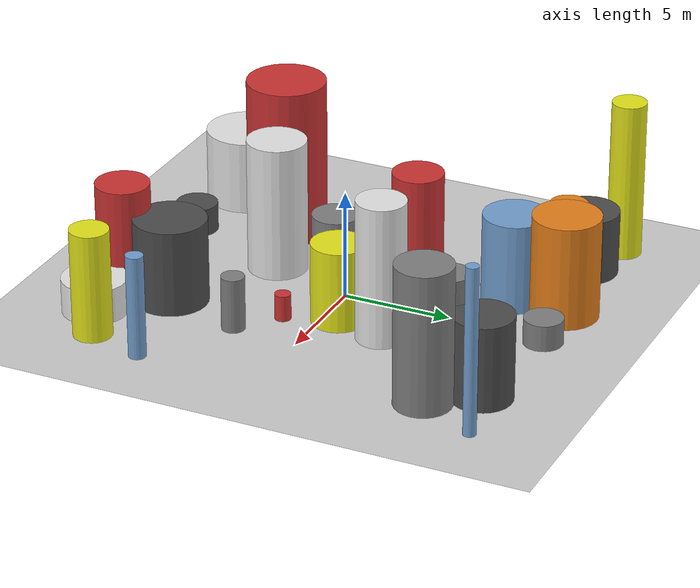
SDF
<?xml version='1.0'?>
<sdf version='1.6'>
  <world name='default'>
    <!-- Sun light -->
    <light name='sun' type='directional'>
      <cast_shadows>1</cast_shadows>
      <pose>0 0 10 0 0 0</pose>
      <diffuse>0.8 0.8 0.8 1</diffuse>
      <specular>0.2 0.2 0.2 1</specular>
      <attenuation>
        <range>1000</range>
        <constant>0.9</constant>
        <linear>0.01</linear>
        <quadratic>0.001</quadratic>
      </attenuation>
      <direction>-0.5 0.1 -0.9</direction>
    </light>

    <!-- Ground plane -->
    <model name='ground_plane'>
      <static>1</static>
      <link name='link'>
        <collision name='collision'>
          <geometry>
            <plane>
              <normal>0 0 1</normal>
              <size>100 100</size>
            </plane>
          </geometry>
          <surface>
            <contact>
              <collide_bitmask>65535</collide_bitmask>
              <ode/>
            </contact>
            <friction>
              <ode>
                <mu>100</mu>
                <mu2>50</mu2>
              </ode>
              <torsional><ode/></torsional>
            </friction>
            <bounce/>
          </surface>
          <max_contacts>10</max_contacts>
        </collision>
        <visual name='visual'>
          <cast_shadows>0</cast_shadows>
          <geometry>
            <plane>
              <normal>0 0 1</normal>
              <size>100 100</size>
            </plane>
          </geometry>
          <material>
            <script>
              <uri>file://media/materials/scripts/gazebo.material</uri>
              <n>Gazebo/Grey</n>
            </script>
          </material>
        </visual>
      </link>
    </model>

    <!-- Environment -->
    <magnetic_field>6e-06 2.3e-05 -4.2e-05</magnetic_field>
    <atmosphere type='adiabatic'/>
    <physics name='default_physics' default='0' type='ode'>
      <gravity>0 0 -9.8</gravity>
      <max_step_size>0.004</max_step_size>
      <real_time_factor>1</real_time_factor>
      <real_time_update_rate>250</real_time_update_rate>
    </physics>
    <scene>
      <ambient>0.4 0.4 0.4 1</ambient>
      <background>0.7 0.7 0.7 1</background>
      <shadows>1</shadows>
    </scene>
    <wind/>
    <spherical_coordinates>
      <surface_model>EARTH_WGS84</surface_model>
      <latitude_deg>0</latitude_deg>
      <longitude_deg>0</longitude_deg>
      <elevation>0</elevation>
      <heading_deg>0</heading_deg>
    </spherical_coordinates>

    <!-- ============ OBSTACLES (25) ============ -->
    <model name='obs_00'>
      <static>1</static>
      <link name='link'>
        <visual name='visual'>
          <geometry>
            <cylinder>
              <radius>0.8717</radius>
              <length>4.3655</length>
            </cylinder>
          </geometry>
          <material>
            <script>
              <n>Gazebo/Orange</n>
              <uri>file://media/materials/scripts/gazebo.material</uri>
            </script>
            <ambient>0.9 0.5 0.1 1</ambient>
          </material>
        </visual>
        <collision name='collision'>
          <geometry>
            <cylinder>
              <radius>0.8717</radius>
              <length>4.3655</length>
            </cylinder>
          </geometry>
          <max_contacts>10</max_contacts>
          <surface>
            <contact><ode/></contact>
            <bounce/>
            <friction>
              <ode><mu>1</mu><mu2>1</mu2></ode>
              <torsional><ode/></torsional>
            </friction>
          </surface>
        </collision>
      </link>
      <pose>-4.4762 8.7029 2.1828 0 0 1.8755</pose>
    </model>

    <model name='obs_01'>
      <static>1</static>
      <link name='link'>
        <visual name='visual'>
          <geometry>
            <cylinder>
              <radius>0.2915</radius>
              <length>7.7153</length>
            </cylinder>
          </geometry>
          <material>
            <script>
              <n>Gazebo/Blue</n>
              <uri>file://media/materials/scripts/gazebo.material</uri>
            </script>
            <ambient>0.447 0.624 0.812 1</ambient>
          </material>
        </visual>
        <collision name='collision'>
          <geometry>
            <cylinder>
              <radius>0.2915</radius>
              <length>7.7153</length>
            </cylinder>
          </geometry>
          <max_contacts>10</max_contacts>
          <surface>
            <contact><ode/></contact>
            <bounce/>
            <friction>
              <ode><mu>1</mu><mu2>1</mu2></ode>
              <torsional><ode/></torsional>
            </friction>
          </surface>
        </collision>
      </link>
      <pose>8.8275 9.7919 3.8577 0 0 1.1324</pose>
    </model>

    <model name='obs_02'>
      <static>1</static>
      <link name='link'>
        <visual name='visual'>
          <geometry>
            <cylinder>
              <radius>0.9634</radius>
              <length>1.3261</length>
            </cylinder>
          </geometry>
          <material>
            <script>
              <n>Gazebo/DarkGrey</n>
              <uri>file://media/materials/scripts/gazebo.material</uri>
            </script>
            <ambient>0.3 0.3 0.3 1</ambient>
          </material>
        </visual>
        <collision name='collision'>
          <geometry>
            <cylinder>
              <radius>0.9634</radius>
              <length>1.3261</length>
            </cylinder>
          </geometry>
          <max_contacts>10</max_contacts>
          <surface>
            <contact><ode/></contact>
            <bounce/>
            <friction>
              <ode><mu>1</mu><mu2>1</mu2></ode>
              <torsional><ode/></torsional>
            </friction>
          </surface>
        </collision>
      </link>
      <pose>-3.1771 -9.0283 0.6631 0 0 0.4837</pose>
    </model>

    <model name='obs_03'>
      <static>1</static>
      <link name='link'>
        <visual name='visual'>
          <geometry>
            <cylinder>
              <radius>1.8296</radius>
              <length>7.4890</length>
            </cylinder>
          </geometry>
          <material>
            <script>
              <n>Gazebo/Red</n>
              <uri>file://media/materials/scripts/gazebo.material</uri>
            </script>
            <ambient>0.8 0.2 0.2 1</ambient>
          </material>
        </visual>
        <collision name='collision'>
          <geometry>
            <cylinder>
              <radius>1.8296</radius>
              <length>7.4890</length>
            </cylinder>
          </geometry>
          <max_contacts>10</max_contacts>
          <surface>
            <contact><ode/></contact>
            <bounce/>
            <friction>
              <ode><mu>1</mu><mu2>1</mu2></ode>
              <torsional><ode/></torsional>
            </friction>
          </surface>
        </collision>
      </link>
      <pose>-4.8247 -5.2079 3.7445 0 0 0.2524</pose>
    </model>

    <model name='obs_04'>
      <static>1</static>
      <link name='link'>
        <visual name='visual'>
          <geometry>
            <cylinder>
              <radius>1.0724</radius>
              <length>3.1667</length>
            </cylinder>
          </geometry>
          <material>
            <script>
              <n>Gazebo/Grey</n>
              <uri>file://media/materials/scripts/gazebo.material</uri>
            </script>
            <ambient>0.5 0.5 0.5 1</ambient>
          </material>
        </visual>
        <collision name='collision'>
          <geometry>
            <cylinder>
              <radius>1.0724</radius>
              <length>3.1667</length>
            </cylinder>
          </geometry>
          <max_contacts>10</max_contacts>
          <surface>
            <contact><ode/></contact>
            <bounce/>
            <friction>
              <ode><mu>1</mu><mu2>1</mu2></ode>
              <torsional><ode/></torsional>
            </friction>
          </surface>
        </collision>
      </link>
      <pose>-1.3801 -1.1194 1.5833 0 0 2.6128</pose>
    </model>

    <model name='obs_05'>
      <static>1</static>
      <link name='link'>
        <visual name='visual'>
          <geometry>
            <cylinder>
              <radius>1.8860</radius>
              <length>3.4687</length>
            </cylinder>
          </geometry>
          <material>
            <script>
              <n>Gazebo/White</n>
              <uri>file://media/materials/scripts/gazebo.material</uri>
            </script>
            <ambient>0.9 0.9 0.9 1</ambient>
          </material>
        </visual>
        <collision name='collision'>
          <geometry>
            <cylinder>
              <radius>1.8860</radius>
              <length>3.4687</length>
            </cylinder>
          </geometry>
          <max_contacts>10</max_contacts>
          <surface>
            <contact><ode/></contact>
            <bounce/>
            <friction>
              <ode><mu>1</mu><mu2>1</mu2></ode>
              <torsional><ode/></torsional>
            </friction>
          </surface>
        </collision>
      </link>
      <pose>-7.2040 -8.4754 1.7343 0 0 0.5397</pose>
    </model>

    <model name='obs_06'>
      <static>1</static>
      <link name='link'>
        <visual name='visual'>
          <geometry>
            <cylinder>
              <radius>0.8839</radius>
              <length>5.0562</length>
            </cylinder>
          </geometry>
          <material>
            <script>
              <n>Gazebo/Yellow</n>
              <uri>file://media/materials/scripts/gazebo.material</uri>
            </script>
            <ambient>0.9 0.9 0.1 1</ambient>
          </material>
        </visual>
        <collision name='collision'>
          <geometry>
            <cylinder>
              <radius>0.8839</radius>
              <length>5.0562</length>
            </cylinder>
          </geometry>
          <max_contacts>10</max_contacts>
          <surface>
            <contact><ode/></contact>
            <bounce/>
            <friction>
              <ode><mu>1</mu><mu2>1</mu2></ode>
              <torsional><ode/></torsional>
            </friction>
          </surface>
        </collision>
      </link>
      <pose>7.8494 -8.3391 2.5281 0 0 2.3126</pose>
    </model>

    <model name='obs_07'>
      <static>1</static>
      <link name='link'>
        <visual name='visual'>
          <geometry>
            <cylinder>
              <radius>1.1575</radius>
              <length>6.0859</length>
            </cylinder>
          </geometry>
          <material>
            <script>
              <n>Gazebo/Red</n>
              <uri>file://media/materials/scripts/gazebo.material</uri>
            </script>
            <ambient>0.8 0.2 0.2 1</ambient>
          </material>
        </visual>
        <collision name='collision'>
          <geometry>
            <cylinder>
              <radius>1.1575</radius>
              <length>6.0859</length>
            </cylinder>
          </geometry>
          <max_contacts>10</max_contacts>
          <surface>
            <contact><ode/></contact>
            <bounce/>
            <friction>
              <ode><mu>1</mu><mu2>1</mu2></ode>
              <torsional><ode/></torsional>
            </friction>
          </surface>
        </collision>
      </link>
      <pose>-1.2578 2.9078 3.0429 0 0 2.4791</pose>
    </model>

    <model name='obs_08'>
      <static>1</static>
      <link name='link'>
        <visual name='visual'>
          <geometry>
            <cylinder>
              <radius>1.2330</radius>
              <length>5.1583</length>
            </cylinder>
          </geometry>
          <material>
            <script>
              <n>Gazebo/Red</n>
              <uri>file://media/materials/scripts/gazebo.material</uri>
            </script>
            <ambient>0.8 0.2 0.2 1</ambient>
          </material>
        </visual>
        <collision name='collision'>
          <geometry>
            <cylinder>
              <radius>1.2330</radius>
              <length>5.1583</length>
            </cylinder>
          </geometry>
          <max_contacts>10</max_contacts>
          <surface>
            <contact><ode/></contact>
            <bounce/>
            <friction>
              <ode><mu>1</mu><mu2>1</mu2></ode>
              <torsional><ode/></torsional>
            </friction>
          </surface>
        </collision>
      </link>
      <pose>3.4368 -9.1506 2.5792 0 0 1.2374</pose>
    </model>

    <model name='obs_09'>
      <static>1</static>
      <link name='link'>
        <visual name='visual'>
          <geometry>
            <cylinder>
              <radius>1.5436</radius>
              <length>4.8237</length>
            </cylinder>
          </geometry>
          <material>
            <script>
              <n>Gazebo/Orange</n>
              <uri>file://media/materials/scripts/gazebo.material</uri>
            </script>
            <ambient>0.9 0.5 0.1 1</ambient>
          </material>
        </visual>
        <collision name='collision'>
          <geometry>
            <cylinder>
              <radius>1.5436</radius>
              <length>4.8237</length>
            </cylinder>
          </geometry>
          <max_contacts>10</max_contacts>
          <surface>
            <contact><ode/></contact>
            <bounce/>
            <friction>
              <ode><mu>1</mu><mu2>1</mu2></ode>
              <torsional><ode/></torsional>
            </friction>
          </surface>
        </collision>
      </link>
      <pose>-2.5057 9.3971 2.4118 0 0 2.8350</pose>
    </model>

    <model name='obs_10'>
      <static>1</static>
      <link name='link'>
        <visual name='visual'>
          <geometry>
            <cylinder>
              <radius>1.1261</radius>
              <length>6.5805</length>
            </cylinder>
          </geometry>
          <material>
            <script>
              <n>Gazebo/White</n>
              <uri>file://media/materials/scripts/gazebo.material</uri>
            </script>
            <ambient>0.9 0.9 0.9 1</ambient>
          </material>
        </visual>
        <collision name='collision'>
          <geometry>
            <cylinder>
              <radius>1.1261</radius>
              <length>6.5805</length>
            </cylinder>
          </geometry>
          <max_contacts>10</max_contacts>
          <surface>
            <contact><ode/></contact>
            <bounce/>
            <friction>
              <ode><mu>1</mu><mu2>1</mu2></ode>
              <torsional><ode/></torsional>
            </friction>
          </surface>
        </collision>
      </link>
      <pose>2.8392 3.0356 3.2903 0 0 1.2753</pose>
    </model>

    <model name='obs_11'>
      <static>1</static>
      <link name='link'>
        <visual name='visual'>
          <geometry>
            <cylinder>
              <radius>0.8899</radius>
              <length>1.2074</length>
            </cylinder>
          </geometry>
          <material>
            <script>
              <n>Gazebo/Grey</n>
              <uri>file://media/materials/scripts/gazebo.material</uri>
            </script>
            <ambient>0.5 0.5 0.5 1</ambient>
          </material>
        </visual>
        <collision name='collision'>
          <geometry>
            <cylinder>
              <radius>0.8899</radius>
              <length>1.2074</length>
            </cylinder>
          </geometry>
          <max_contacts>10</max_contacts>
          <surface>
            <contact><ode/></contact>
            <bounce/>
            <friction>
              <ode><mu>1</mu><mu2>1</mu2></ode>
              <torsional><ode/></torsional>
            </friction>
          </surface>
        </collision>
      </link>
      <pose>0.2636 9.5333 0.6037 0 0 0.0027</pose>
    </model>

    <model name='obs_12'>
      <static>1</static>
      <link name='link'>
        <visual name='visual'>
          <geometry>
            <cylinder>
              <radius>1.2908</radius>
              <length>6.5016</length>
            </cylinder>
          </geometry>
          <material>
            <script>
              <n>Gazebo/Grey</n>
              <uri>file://media/materials/scripts/gazebo.material</uri>
            </script>
            <ambient>0.5 0.5 0.5 1</ambient>
          </material>
        </visual>
        <collision name='collision'>
          <geometry>
            <cylinder>
              <radius>1.2908</radius>
              <length>6.5016</length>
            </cylinder>
          </geometry>
          <max_contacts>10</max_contacts>
          <surface>
            <contact><ode/></contact>
            <bounce/>
            <friction>
              <ode><mu>1</mu><mu2>1</mu2></ode>
              <torsional><ode/></torsional>
            </friction>
          </surface>
        </collision>
      </link>
      <pose>7.3109 7.0278 3.2508 0 0 0.7796</pose>
    </model>

    <model name='obs_13'>
      <static>1</static>
      <link name='link'>
        <visual name='visual'>
          <geometry>
            <cylinder>
              <radius>1.4566</radius>
              <length>4.2049</length>
            </cylinder>
          </geometry>
          <material>
            <script>
              <n>Gazebo/Blue</n>
              <uri>file://media/materials/scripts/gazebo.material</uri>
            </script>
            <ambient>0.447 0.624 0.812 1</ambient>
          </material>
        </visual>
        <collision name='collision'>
          <geometry>
            <cylinder>
              <radius>1.4566</radius>
              <length>4.2049</length>
            </cylinder>
          </geometry>
          <max_contacts>10</max_contacts>
          <surface>
            <contact><ode/></contact>
            <bounce/>
            <friction>
              <ode><mu>1</mu><mu2>1</mu2></ode>
              <torsional><ode/></torsional>
            </friction>
          </surface>
        </collision>
      </link>
      <pose>-2.8391 6.8548 2.1025 0 0 1.9996</pose>
    </model>

    <model name='obs_14'>
      <static>1</static>
      <link name='link'>
        <visual name='visual'>
          <geometry>
            <cylinder>
              <radius>0.8986</radius>
              <length>5.0391</length>
            </cylinder>
          </geometry>
          <material>
            <script>
              <n>Gazebo/Grey</n>
              <uri>file://media/materials/scripts/gazebo.material</uri>
            </script>
            <ambient>0.5 0.5 0.5 1</ambient>
          </material>
        </visual>
        <collision name='collision'>
          <geometry>
            <cylinder>
              <radius>0.8986</radius>
              <length>5.0391</length>
            </cylinder>
          </geometry>
          <max_contacts>10</max_contacts>
          <surface>
            <contact><ode/></contact>
            <bounce/>
            <friction>
              <ode><mu>1</mu><mu2>1</mu2></ode>
              <torsional><ode/></torsional>
            </friction>
          </surface>
        </collision>
      </link>
      <pose>4.9651 7.1814 2.5195 0 0 0.3516</pose>
    </model>

    <model name='obs_15'>
      <static>1</static>
      <link name='link'>
        <visual name='visual'>
          <geometry>
            <cylinder>
              <radius>1.2300</radius>
              <length>3.7684</length>
            </cylinder>
          </geometry>
          <material>
            <script>
              <n>Gazebo/Yellow</n>
              <uri>file://media/materials/scripts/gazebo.material</uri>
            </script>
            <ambient>0.9 0.9 0.1 1</ambient>
          </material>
        </visual>
        <collision name='collision'>
          <geometry>
            <cylinder>
              <radius>1.2300</radius>
              <length>3.7684</length>
            </cylinder>
          </geometry>
          <max_contacts>10</max_contacts>
          <surface>
            <contact><ode/></contact>
            <bounce/>
            <friction>
              <ode><mu>1</mu><mu2>1</mu2></ode>
              <torsional><ode/></torsional>
            </friction>
          </surface>
        </collision>
      </link>
      <pose>2.1874 0.7067 1.8842 0 0 0.1487</pose>
    </model>

    <model name='obs_16'>
      <static>1</static>
      <link name='link'>
        <visual name='visual'>
          <geometry>
            <cylinder>
              <radius>1.4891</radius>
              <length>1.6015</length>
            </cylinder>
          </geometry>
          <material>
            <script>
              <n>Gazebo/White</n>
              <uri>file://media/materials/scripts/gazebo.material</uri>
            </script>
            <ambient>0.9 0.9 0.9 1</ambient>
          </material>
        </visual>
        <collision name='collision'>
          <geometry>
            <cylinder>
              <radius>1.4891</radius>
              <length>1.6015</length>
            </cylinder>
          </geometry>
          <max_contacts>10</max_contacts>
          <surface>
            <contact><ode/></contact>
            <bounce/>
            <friction>
              <ode><mu>1</mu><mu2>1</mu2></ode>
              <torsional><ode/></torsional>
            </friction>
          </surface>
        </collision>
      </link>
      <pose>5.8320 -9.3429 0.8008 0 0 1.1448</pose>
    </model>

    <model name='obs_17'>
      <static>1</static>
      <link name='link'>
        <visual name='visual'>
          <geometry>
            <cylinder>
              <radius>1.6654</radius>
              <length>4.0003</length>
            </cylinder>
          </geometry>
          <material>
            <script>
              <n>Gazebo/DarkGrey</n>
              <uri>file://media/materials/scripts/gazebo.material</uri>
            </script>
            <ambient>0.3 0.3 0.3 1</ambient>
          </material>
        </visual>
        <collision name='collision'>
          <geometry>
            <cylinder>
              <radius>1.6654</radius>
              <length>4.0003</length>
            </cylinder>
          </geometry>
          <max_contacts>10</max_contacts>
          <surface>
            <contact><ode/></contact>
            <bounce/>
            <friction>
              <ode><mu>1</mu><mu2>1</mu2></ode>
              <torsional><ode/></torsional>
            </friction>
          </surface>
        </collision>
      </link>
      <pose>3.5525 -6.7696 2.0002 0 0 0.5558</pose>
    </model>

    <model name='obs_18'>
      <static>1</static>
      <link name='link'>
        <visual name='visual'>
          <geometry>
            <cylinder>
              <radius>0.5318</radius>
              <length>2.5323</length>
            </cylinder>
          </geometry>
          <material>
            <script>
              <n>Gazebo/Grey</n>
              <uri>file://media/materials/scripts/gazebo.material</uri>
            </script>
            <ambient>0.5 0.5 0.5 1</ambient>
          </material>
        </visual>
        <collision name='collision'>
          <geometry>
            <cylinder>
              <radius>0.5318</radius>
              <length>2.5323</length>
            </cylinder>
          </geometry>
          <max_contacts>10</max_contacts>
          <surface>
            <contact><ode/></contact>
            <bounce/>
            <friction>
              <ode><mu>1</mu><mu2>1</mu2></ode>
              <torsional><ode/></torsional>
            </friction>
          </surface>
        </collision>
      </link>
      <pose>4.7837 -3.0934 1.2662 0 0 1.8783</pose>
    </model>

    <model name='obs_19'>
      <static>1</static>
      <link name='link'>
        <visual name='visual'>
          <geometry>
            <cylinder>
              <radius>0.7953</radius>
              <length>7.4582</length>
            </cylinder>
          </geometry>
          <material>
            <script>
              <n>Gazebo/Yellow</n>
              <uri>file://media/materials/scripts/gazebo.material</uri>
            </script>
            <ambient>0.9 0.9 0.1 1</ambient>
          </material>
        </visual>
        <collision name='collision'>
          <geometry>
            <cylinder>
              <radius>0.7953</radius>
              <length>7.4582</length>
            </cylinder>
          </geometry>
          <max_contacts>10</max_contacts>
          <surface>
            <contact><ode/></contact>
            <bounce/>
            <friction>
              <ode><mu>1</mu><mu2>1</mu2></ode>
              <torsional><ode/></torsional>
            </friction>
          </surface>
        </collision>
      </link>
      <pose>-9.2373 9.5949 3.7291 0 0 2.9093</pose>
    </model>

    <model name='obs_20'>
      <static>1</static>
      <link name='link'>
        <visual name='visual'>
          <geometry>
            <cylinder>
              <radius>0.3703</radius>
              <length>1.2117</length>
            </cylinder>
          </geometry>
          <material>
            <script>
              <n>Gazebo/Red</n>
              <uri>file://media/materials/scripts/gazebo.material</uri>
            </script>
            <ambient>0.8 0.2 0.2 1</ambient>
          </material>
        </visual>
        <collision name='collision'>
          <geometry>
            <cylinder>
              <radius>0.3703</radius>
              <length>1.2117</length>
            </cylinder>
          </geometry>
          <max_contacts>10</max_contacts>
          <surface>
            <contact><ode/></contact>
            <bounce/>
            <friction>
              <ode><mu>1</mu><mu2>1</mu2></ode>
              <torsional><ode/></torsional>
            </friction>
          </surface>
        </collision>
      </link>
      <pose>3.0687 -1.5515 0.6059 0 0 0.1087</pose>
    </model>

    <model name='obs_21'>
      <static>1</static>
      <link name='link'>
        <visual name='visual'>
          <geometry>
            <cylinder>
              <radius>1.4170</radius>
              <length>3.0183</length>
            </cylinder>
          </geometry>
          <material>
            <script>
              <n>Gazebo/DarkGrey</n>
              <uri>file://media/materials/scripts/gazebo.material</uri>
            </script>
            <ambient>0.3 0.3 0.3 1</ambient>
          </material>
        </visual>
        <collision name='collision'>
          <geometry>
            <cylinder>
              <radius>1.4170</radius>
              <length>3.0183</length>
            </cylinder>
          </geometry>
          <max_contacts>10</max_contacts>
          <surface>
            <contact><ode/></contact>
            <bounce/>
            <friction>
              <ode><mu>1</mu><mu2>1</mu2></ode>
              <torsional><ode/></torsional>
            </friction>
          </surface>
        </collision>
      </link>
      <pose>-6.8093 8.7480 1.5092 0 0 1.6871</pose>
    </model>

    <model name='obs_22'>
      <static>1</static>
      <link name='link'>
        <visual name='visual'>
          <geometry>
            <cylinder>
              <radius>0.3985</radius>
              <length>4.8050</length>
            </cylinder>
          </geometry>
          <material>
            <script>
              <n>Gazebo/Blue</n>
              <uri>file://media/materials/scripts/gazebo.material</uri>
            </script>
            <ambient>0.447 0.624 0.812 1</ambient>
          </material>
        </visual>
        <collision name='collision'>
          <geometry>
            <cylinder>
              <radius>0.3985</radius>
              <length>4.8050</length>
            </cylinder>
          </geometry>
          <max_contacts>10</max_contacts>
          <surface>
            <contact><ode/></contact>
            <bounce/>
            <friction>
              <ode><mu>1</mu><mu2>1</mu2></ode>
              <torsional><ode/></torsional>
            </friction>
          </surface>
        </collision>
      </link>
      <pose>8.7551 -5.6572 2.4025 0 0 3.0584</pose>
    </model>

    <model name='obs_23'>
      <static>1</static>
      <link name='link'>
        <visual name='visual'>
          <geometry>
            <cylinder>
              <radius>1.3638</radius>
              <length>6.3007</length>
            </cylinder>
          </geometry>
          <material>
            <script>
              <n>Gazebo/White</n>
              <uri>file://media/materials/scripts/gazebo.material</uri>
            </script>
            <ambient>0.9 0.9 0.9 1</ambient>
          </material>
        </visual>
        <collision name='collision'>
          <geometry>
            <cylinder>
              <radius>1.3638</radius>
              <length>6.3007</length>
            </cylinder>
          </geometry>
          <max_contacts>10</max_contacts>
          <surface>
            <contact><ode/></contact>
            <bounce/>
            <friction>
              <ode><mu>1</mu><mu2>1</mu2></ode>
              <torsional><ode/></torsional>
            </friction>
          </surface>
        </collision>
      </link>
      <pose>-1.2404 -3.9269 3.1504 0 0 0.2779</pose>
    </model>

    <model name='obs_24'>
      <static>1</static>
      <link name='link'>
        <visual name='visual'>
          <geometry>
            <cylinder>
              <radius>1.3605</radius>
              <length>3.9302</length>
            </cylinder>
          </geometry>
          <material>
            <script>
              <n>Gazebo/DarkGrey</n>
              <uri>file://media/materials/scripts/gazebo.material</uri>
            </script>
            <ambient>0.3 0.3 0.3 1</ambient>
          </material>
        </visual>
        <collision name='collision'>
          <geometry>
            <cylinder>
              <radius>1.3605</radius>
              <length>3.9302</length>
            </cylinder>
          </geometry>
          <max_contacts>10</max_contacts>
          <surface>
            <contact><ode/></contact>
            <bounce/>
            <friction>
              <ode><mu>1</mu><mu2>1</mu2></ode>
              <torsional><ode/></torsional>
            </friction>
          </surface>
        </collision>
      </link>
      <pose>5.8090 9.0489 1.9651 0 0 2.0222</pose>
    </model>

    <!-- GUI camera -->
    <gui fullscreen='0'>
      <camera name='user_camera'>
        <pose>-15 0 18 0 0.85 0.15</pose>
        <view_controller>orbit</view_controller>
        <projection_type>perspective</projection_type>
      </camera>
    </gui>
  </world>
</sdf>
